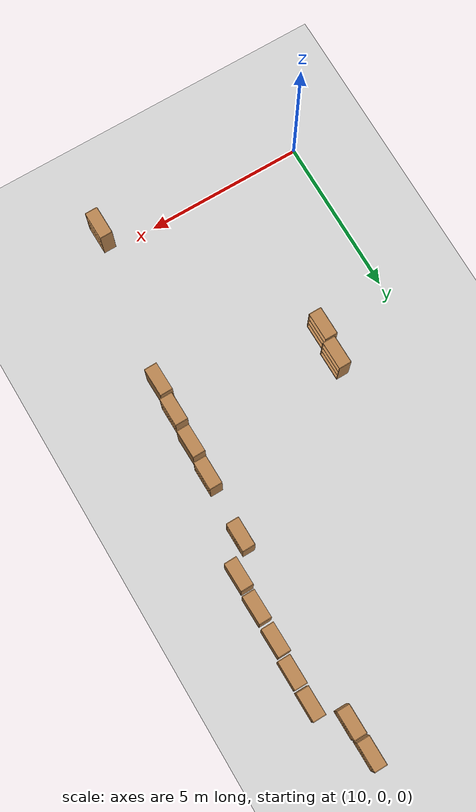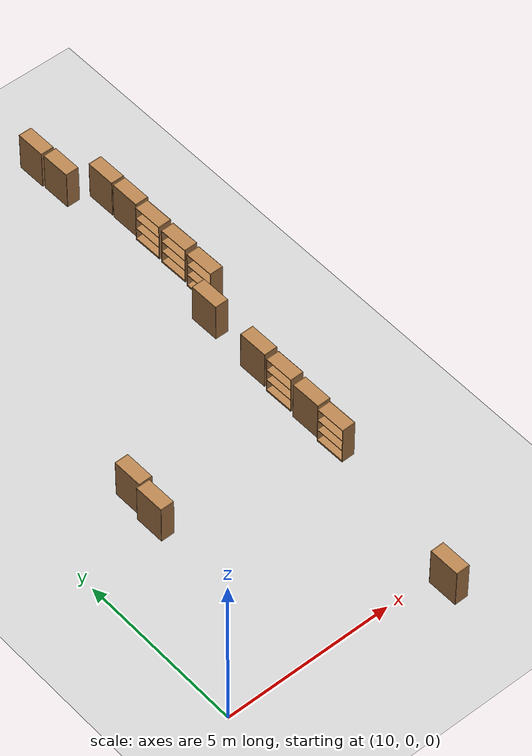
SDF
<sdf version="1.6">
 <world name="default">
  <model name="ground_plane">
   <static>1</static>
   <link name="link">
    <collision name="collision">
     <geometry><plane><normal>0 0 1</normal><size>100 100</size></plane></geometry>
     <surface>
      <contact><collide_bitmask>65535</collide_bitmask></contact>
      <friction><ode><mu>100</mu><mu2>50</mu2></ode></friction>
     </surface>
    </collision>
    <visual name="visual">
     <cast_shadows>0</cast_shadows>
     <geometry><plane><normal>0 0 1</normal><size>100 100</size></plane></geometry>
     <material>
      <script><uri>file://media/materials/scripts/gazebo.material</uri><name>Gazebo/Grey</name></script>
     </material>
    </visual>
   </link>
  </model>
  <model name="30x30env"><static>1</static><pose>32.1206 3.39752 0 0 -0 0</pose></model>
  <model name="bookshelf_clone_clone_0_clone_clone_0_clone_5_clone_clone_clone_2">
   <static>1</static>
   <link name="link">
    <inertial><mass>1</mass></inertial>
    <collision name="back">
     <pose>0 0.005 0.6 0 -0 0</pose>
     <geometry><box><size>0.9 0.01 1.2</size></box></geometry>
    </collision>
    <visual name="visual1">
     <pose>0 0.005 0.6 0 -0 0</pose>
     <geometry><box><size>0.9 0.01 1.2</size></box></geometry>
     <material>
      <script><uri>file://media/materials/scripts/gazebo.material</uri><name>Gazebo/Wood</name></script>
     </material>
    </visual>
    <collision name="left_side">
     <pose>0.45 -0.195 0.6 0 -0 0</pose>
     <geometry><box><size>0.02 0.4 1.2</size></box></geometry>
    </collision>
    <visual name="visual2">
     <pose>0.45 -0.195 0.6 0 -0 0</pose>
     <geometry><box><size>0.02 0.4 1.2</size></box></geometry>
     <material>
      <script><uri>file://media/materials/scripts/gazebo.material</uri><name>Gazebo/Wood</name></script>
     </material>
    </visual>
    <collision name="right_side">
     <pose>-0.45 -0.195 0.6 0 -0 0</pose>
     <geometry><box><size>0.02 0.4 1.2</size></box></geometry>
    </collision>
    <visual name="visual3">
     <pose>-0.45 -0.195 0.6 0 -0 0</pose>
     <geometry><box><size>0.02 0.4 1.2</size></box></geometry>
     <material>
      <script><uri>file://media/materials/scripts/gazebo.material</uri><name>Gazebo/Wood</name></script>
     </material>
    </visual>
    <collision name="bottom">
     <pose>0 -0.195 0.03 0 -0 0</pose>
     <geometry><box><size>0.88 0.4 0.06</size></box></geometry>
    </collision>
    <visual name="visual4">
     <pose>0 -0.195 0.03 0 -0 0</pose>
     <geometry><box><size>0.88 0.4 0.06</size></box></geometry>
     <material>
      <script><uri>file://media/materials/scripts/gazebo.material</uri><name>Gazebo/Wood</name></script>
     </material>
    </visual>
    <collision name="top">
     <pose>0 -0.195 1.19 0 -0 0</pose>
     <geometry><box><size>0.88 0.4 0.02</size></box></geometry>
    </collision>
    <visual name="visual5">
     <pose>0 -0.195 1.19 0 -0 0</pose>
     <geometry><box><size>0.88 0.4 0.02</size></box></geometry>
     <material>
      <script><uri>file://media/materials/scripts/gazebo.material</uri><name>Gazebo/Wood</name></script>
     </material>
    </visual>
    <collision name="low_shelf">
     <pose>0 -0.195 0.43 0 -0 0</pose>
     <geometry><box><size>0.88 0.4 0.02</size></box></geometry>
    </collision>
    <visual name="visual6">
     <pose>0 -0.195 0.43 0 -0 0</pose>
     <geometry><box><size>0.88 0.4 0.02</size></box></geometry>
     <material>
      <script><uri>file://media/materials/scripts/gazebo.material</uri><name>Gazebo/Wood</name></script>
     </material>
    </visual>
    <collision name="high_shelf">
     <pose>0 -0.195 0.8 0 -0 0</pose>
     <geometry><box><size>0.88 0.4 0.02</size></box></geometry>
    </collision>
    <visual name="visual7">
     <pose>0 -0.195 0.8 0 -0 0</pose>
     <geometry><box><size>0.88 0.4 0.02</size></box></geometry>
     <material>
      <script><uri>file://media/materials/scripts/gazebo.material</uri><name>Gazebo/Wood</name></script>
     </material>
    </visual>
   </link>
   <pose>12.1844 5.48615 0 0 -0 1.58018</pose>
  </model>
  <model name="bookshelf_clone_clone_0_clone_clone_0_clone_5_clone_clone_clone_3">
   <static>1</static>
   <link name="link">
    <inertial><mass>1</mass></inertial>
    <collision name="back">
     <pose>0 0.005 0.6 0 -0 0</pose>
     <geometry><box><size>0.9 0.01 1.2</size></box></geometry>
    </collision>
    <visual name="visual1">
     <pose>0 0.005 0.6 0 -0 0</pose>
     <geometry><box><size>0.9 0.01 1.2</size></box></geometry>
     <material>
      <script><uri>file://media/materials/scripts/gazebo.material</uri><name>Gazebo/Wood</name></script>
     </material>
    </visual>
    <collision name="left_side">
     <pose>0.45 -0.195 0.6 0 -0 0</pose>
     <geometry><box><size>0.02 0.4 1.2</size></box></geometry>
    </collision>
    <visual name="visual2">
     <pose>0.45 -0.195 0.6 0 -0 0</pose>
     <geometry><box><size>0.02 0.4 1.2</size></box></geometry>
     <material>
      <script><uri>file://media/materials/scripts/gazebo.material</uri><name>Gazebo/Wood</name></script>
     </material>
    </visual>
    <collision name="right_side">
     <pose>-0.45 -0.195 0.6 0 -0 0</pose>
     <geometry><box><size>0.02 0.4 1.2</size></box></geometry>
    </collision>
    <visual name="visual3">
     <pose>-0.45 -0.195 0.6 0 -0 0</pose>
     <geometry><box><size>0.02 0.4 1.2</size></box></geometry>
     <material>
      <script><uri>file://media/materials/scripts/gazebo.material</uri><name>Gazebo/Wood</name></script>
     </material>
    </visual>
    <collision name="bottom">
     <pose>0 -0.195 0.03 0 -0 0</pose>
     <geometry><box><size>0.88 0.4 0.06</size></box></geometry>
    </collision>
    <visual name="visual4">
     <pose>0 -0.195 0.03 0 -0 0</pose>
     <geometry><box><size>0.88 0.4 0.06</size></box></geometry>
     <material>
      <script><uri>file://media/materials/scripts/gazebo.material</uri><name>Gazebo/Wood</name></script>
     </material>
    </visual>
    <collision name="top">
     <pose>0 -0.195 1.19 0 -0 0</pose>
     <geometry><box><size>0.88 0.4 0.02</size></box></geometry>
    </collision>
    <visual name="visual5">
     <pose>0 -0.195 1.19 0 -0 0</pose>
     <geometry><box><size>0.88 0.4 0.02</size></box></geometry>
     <material>
      <script><uri>file://media/materials/scripts/gazebo.material</uri><name>Gazebo/Wood</name></script>
     </material>
    </visual>
    <collision name="low_shelf">
     <pose>0 -0.195 0.43 0 -0 0</pose>
     <geometry><box><size>0.88 0.4 0.02</size></box></geometry>
    </collision>
    <visual name="visual6">
     <pose>0 -0.195 0.43 0 -0 0</pose>
     <geometry><box><size>0.88 0.4 0.02</size></box></geometry>
     <material>
      <script><uri>file://media/materials/scripts/gazebo.material</uri><name>Gazebo/Wood</name></script>
     </material>
    </visual>
    <collision name="high_shelf">
     <pose>0 -0.195 0.8 0 -0 0</pose>
     <geometry><box><size>0.88 0.4 0.02</size></box></geometry>
    </collision>
    <visual name="visual7">
     <pose>0 -0.195 0.8 0 -0 0</pose>
     <geometry><box><size>0.88 0.4 0.02</size></box></geometry>
     <material>
      <script><uri>file://media/materials/scripts/gazebo.material</uri><name>Gazebo/Wood</name></script>
     </material>
    </visual>
   </link>
   <pose>12.2953 6.42582 0 0 -0 1.58018</pose>
  </model>
  <model name="bookshelf_clone_clone_0_clone_clone_0_clone_5_clone_clone_clone_4_clone">
   <static>1</static>
   <link name="link">
    <inertial><mass>1</mass></inertial>
    <collision name="back">
     <pose>0 0.005 0.6 0 -0 0</pose>
     <geometry><box><size>0.9 0.01 1.2</size></box></geometry>
    </collision>
    <visual name="visual1">
     <pose>0 0.005 0.6 0 -0 0</pose>
     <geometry><box><size>0.9 0.01 1.2</size></box></geometry>
     <material>
      <script><uri>file://media/materials/scripts/gazebo.material</uri><name>Gazebo/Wood</name></script>
     </material>
    </visual>
    <collision name="left_side">
     <pose>0.45 -0.195 0.6 0 -0 0</pose>
     <geometry><box><size>0.02 0.4 1.2</size></box></geometry>
    </collision>
    <visual name="visual2">
     <pose>0.45 -0.195 0.6 0 -0 0</pose>
     <geometry><box><size>0.02 0.4 1.2</size></box></geometry>
     <material>
      <script><uri>file://media/materials/scripts/gazebo.material</uri><name>Gazebo/Wood</name></script>
     </material>
    </visual>
    <collision name="right_side">
     <pose>-0.45 -0.195 0.6 0 -0 0</pose>
     <geometry><box><size>0.02 0.4 1.2</size></box></geometry>
    </collision>
    <visual name="visual3">
     <pose>-0.45 -0.195 0.6 0 -0 0</pose>
     <geometry><box><size>0.02 0.4 1.2</size></box></geometry>
     <material>
      <script><uri>file://media/materials/scripts/gazebo.material</uri><name>Gazebo/Wood</name></script>
     </material>
    </visual>
    <collision name="bottom">
     <pose>0 -0.195 0.03 0 -0 0</pose>
     <geometry><box><size>0.88 0.4 0.06</size></box></geometry>
    </collision>
    <visual name="visual4">
     <pose>0 -0.195 0.03 0 -0 0</pose>
     <geometry><box><size>0.88 0.4 0.06</size></box></geometry>
     <material>
      <script><uri>file://media/materials/scripts/gazebo.material</uri><name>Gazebo/Wood</name></script>
     </material>
    </visual>
    <collision name="top">
     <pose>0 -0.195 1.19 0 -0 0</pose>
     <geometry><box><size>0.88 0.4 0.02</size></box></geometry>
    </collision>
    <visual name="visual5">
     <pose>0 -0.195 1.19 0 -0 0</pose>
     <geometry><box><size>0.88 0.4 0.02</size></box></geometry>
     <material>
      <script><uri>file://media/materials/scripts/gazebo.material</uri><name>Gazebo/Wood</name></script>
     </material>
    </visual>
    <collision name="low_shelf">
     <pose>0 -0.195 0.43 0 -0 0</pose>
     <geometry><box><size>0.88 0.4 0.02</size></box></geometry>
    </collision>
    <visual name="visual6">
     <pose>0 -0.195 0.43 0 -0 0</pose>
     <geometry><box><size>0.88 0.4 0.02</size></box></geometry>
     <material>
      <script><uri>file://media/materials/scripts/gazebo.material</uri><name>Gazebo/Wood</name></script>
     </material>
    </visual>
    <collision name="high_shelf">
     <pose>0 -0.195 0.8 0 -0 0</pose>
     <geometry><box><size>0.88 0.4 0.02</size></box></geometry>
    </collision>
    <visual name="visual7">
     <pose>0 -0.195 0.8 0 -0 0</pose>
     <geometry><box><size>0.88 0.4 0.02</size></box></geometry>
     <material>
      <script><uri>file://media/materials/scripts/gazebo.material</uri><name>Gazebo/Wood</name></script>
     </material>
    </visual>
   </link>
   <pose>18.0804 14.4891 0 0 -0 1.58018</pose>
  </model>
  <model name="bookshelf_clone_clone_0_clone_clone_0_clone_5_clone_clone_clone_4_clone_0">
   <static>1</static>
   <link name="link">
    <inertial><mass>1</mass></inertial>
    <collision name="back">
     <pose>0 0.005 0.6 0 -0 0</pose>
     <geometry><box><size>0.9 0.01 1.2</size></box></geometry>
    </collision>
    <visual name="visual1">
     <pose>0 0.005 0.6 0 -0 0</pose>
     <geometry><box><size>0.9 0.01 1.2</size></box></geometry>
     <material>
      <script><uri>file://media/materials/scripts/gazebo.material</uri><name>Gazebo/Wood</name></script>
     </material>
    </visual>
    <collision name="left_side">
     <pose>0.45 -0.195 0.6 0 -0 0</pose>
     <geometry><box><size>0.02 0.4 1.2</size></box></geometry>
    </collision>
    <visual name="visual2">
     <pose>0.45 -0.195 0.6 0 -0 0</pose>
     <geometry><box><size>0.02 0.4 1.2</size></box></geometry>
     <material>
      <script><uri>file://media/materials/scripts/gazebo.material</uri><name>Gazebo/Wood</name></script>
     </material>
    </visual>
    <collision name="right_side">
     <pose>-0.45 -0.195 0.6 0 -0 0</pose>
     <geometry><box><size>0.02 0.4 1.2</size></box></geometry>
    </collision>
    <visual name="visual3">
     <pose>-0.45 -0.195 0.6 0 -0 0</pose>
     <geometry><box><size>0.02 0.4 1.2</size></box></geometry>
     <material>
      <script><uri>file://media/materials/scripts/gazebo.material</uri><name>Gazebo/Wood</name></script>
     </material>
    </visual>
    <collision name="bottom">
     <pose>0 -0.195 0.03 0 -0 0</pose>
     <geometry><box><size>0.88 0.4 0.06</size></box></geometry>
    </collision>
    <visual name="visual4">
     <pose>0 -0.195 0.03 0 -0 0</pose>
     <geometry><box><size>0.88 0.4 0.06</size></box></geometry>
     <material>
      <script><uri>file://media/materials/scripts/gazebo.material</uri><name>Gazebo/Wood</name></script>
     </material>
    </visual>
    <collision name="top">
     <pose>0 -0.195 1.19 0 -0 0</pose>
     <geometry><box><size>0.88 0.4 0.02</size></box></geometry>
    </collision>
    <visual name="visual5">
     <pose>0 -0.195 1.19 0 -0 0</pose>
     <geometry><box><size>0.88 0.4 0.02</size></box></geometry>
     <material>
      <script><uri>file://media/materials/scripts/gazebo.material</uri><name>Gazebo/Wood</name></script>
     </material>
    </visual>
    <collision name="low_shelf">
     <pose>0 -0.195 0.43 0 -0 0</pose>
     <geometry><box><size>0.88 0.4 0.02</size></box></geometry>
    </collision>
    <visual name="visual6">
     <pose>0 -0.195 0.43 0 -0 0</pose>
     <geometry><box><size>0.88 0.4 0.02</size></box></geometry>
     <material>
      <script><uri>file://media/materials/scripts/gazebo.material</uri><name>Gazebo/Wood</name></script>
     </material>
    </visual>
    <collision name="high_shelf">
     <pose>0 -0.195 0.8 0 -0 0</pose>
     <geometry><box><size>0.88 0.4 0.02</size></box></geometry>
    </collision>
    <visual name="visual7">
     <pose>0 -0.195 0.8 0 -0 0</pose>
     <geometry><box><size>0.88 0.4 0.02</size></box></geometry>
     <material>
      <script><uri>file://media/materials/scripts/gazebo.material</uri><name>Gazebo/Wood</name></script>
     </material>
    </visual>
   </link>
   <pose>18.0771 13.5175 0 0 -0 1.58018</pose>
  </model>
  <model name="bookshelf_clone_clone_0_clone_clone_0_clone_5_clone_clone_clone_4_clone_1">
   <static>1</static>
   <link name="link">
    <inertial><mass>1</mass></inertial>
    <collision name="back">
     <pose>0 0.005 0.6 0 -0 0</pose>
     <geometry><box><size>0.9 0.01 1.2</size></box></geometry>
    </collision>
    <visual name="visual1">
     <pose>0 0.005 0.6 0 -0 0</pose>
     <geometry><box><size>0.9 0.01 1.2</size></box></geometry>
     <material>
      <script><uri>file://media/materials/scripts/gazebo.material</uri><name>Gazebo/Wood</name></script>
     </material>
    </visual>
    <collision name="left_side">
     <pose>0.45 -0.195 0.6 0 -0 0</pose>
     <geometry><box><size>0.02 0.4 1.2</size></box></geometry>
    </collision>
    <visual name="visual2">
     <pose>0.45 -0.195 0.6 0 -0 0</pose>
     <geometry><box><size>0.02 0.4 1.2</size></box></geometry>
     <material>
      <script><uri>file://media/materials/scripts/gazebo.material</uri><name>Gazebo/Wood</name></script>
     </material>
    </visual>
    <collision name="right_side">
     <pose>-0.45 -0.195 0.6 0 -0 0</pose>
     <geometry><box><size>0.02 0.4 1.2</size></box></geometry>
    </collision>
    <visual name="visual3">
     <pose>-0.45 -0.195 0.6 0 -0 0</pose>
     <geometry><box><size>0.02 0.4 1.2</size></box></geometry>
     <material>
      <script><uri>file://media/materials/scripts/gazebo.material</uri><name>Gazebo/Wood</name></script>
     </material>
    </visual>
    <collision name="bottom">
     <pose>0 -0.195 0.03 0 -0 0</pose>
     <geometry><box><size>0.88 0.4 0.06</size></box></geometry>
    </collision>
    <visual name="visual4">
     <pose>0 -0.195 0.03 0 -0 0</pose>
     <geometry><box><size>0.88 0.4 0.06</size></box></geometry>
     <material>
      <script><uri>file://media/materials/scripts/gazebo.material</uri><name>Gazebo/Wood</name></script>
     </material>
    </visual>
    <collision name="top">
     <pose>0 -0.195 1.19 0 -0 0</pose>
     <geometry><box><size>0.88 0.4 0.02</size></box></geometry>
    </collision>
    <visual name="visual5">
     <pose>0 -0.195 1.19 0 -0 0</pose>
     <geometry><box><size>0.88 0.4 0.02</size></box></geometry>
     <material>
      <script><uri>file://media/materials/scripts/gazebo.material</uri><name>Gazebo/Wood</name></script>
     </material>
    </visual>
    <collision name="low_shelf">
     <pose>0 -0.195 0.43 0 -0 0</pose>
     <geometry><box><size>0.88 0.4 0.02</size></box></geometry>
    </collision>
    <visual name="visual6">
     <pose>0 -0.195 0.43 0 -0 0</pose>
     <geometry><box><size>0.88 0.4 0.02</size></box></geometry>
     <material>
      <script><uri>file://media/materials/scripts/gazebo.material</uri><name>Gazebo/Wood</name></script>
     </material>
    </visual>
    <collision name="high_shelf">
     <pose>0 -0.195 0.8 0 -0 0</pose>
     <geometry><box><size>0.88 0.4 0.02</size></box></geometry>
    </collision>
    <visual name="visual7">
     <pose>0 -0.195 0.8 0 -0 0</pose>
     <geometry><box><size>0.88 0.4 0.02</size></box></geometry>
     <material>
      <script><uri>file://media/materials/scripts/gazebo.material</uri><name>Gazebo/Wood</name></script>
     </material>
    </visual>
   </link>
   <pose>18.4024 12.5443 0 0 0 -1.55213</pose>
  </model>
  <model name="bookshelf_clone_clone_0_clone_clone_0_clone_5_clone_clone_clone_4_clone_1_clone">
   <static>1</static>
   <link name="link">
    <inertial><mass>1</mass></inertial>
    <collision name="back">
     <pose>0 0.005 0.6 0 -0 0</pose>
     <geometry><box><size>0.9 0.01 1.2</size></box></geometry>
    </collision>
    <visual name="visual1">
     <pose>0 0.005 0.6 0 -0 0</pose>
     <geometry><box><size>0.9 0.01 1.2</size></box></geometry>
     <material>
      <script><uri>file://media/materials/scripts/gazebo.material</uri><name>Gazebo/Wood</name></script>
     </material>
    </visual>
    <collision name="left_side">
     <pose>0.45 -0.195 0.6 0 -0 0</pose>
     <geometry><box><size>0.02 0.4 1.2</size></box></geometry>
    </collision>
    <visual name="visual2">
     <pose>0.45 -0.195 0.6 0 -0 0</pose>
     <geometry><box><size>0.02 0.4 1.2</size></box></geometry>
     <material>
      <script><uri>file://media/materials/scripts/gazebo.material</uri><name>Gazebo/Wood</name></script>
     </material>
    </visual>
    <collision name="right_side">
     <pose>-0.45 -0.195 0.6 0 -0 0</pose>
     <geometry><box><size>0.02 0.4 1.2</size></box></geometry>
    </collision>
    <visual name="visual3">
     <pose>-0.45 -0.195 0.6 0 -0 0</pose>
     <geometry><box><size>0.02 0.4 1.2</size></box></geometry>
     <material>
      <script><uri>file://media/materials/scripts/gazebo.material</uri><name>Gazebo/Wood</name></script>
     </material>
    </visual>
    <collision name="bottom">
     <pose>0 -0.195 0.03 0 -0 0</pose>
     <geometry><box><size>0.88 0.4 0.06</size></box></geometry>
    </collision>
    <visual name="visual4">
     <pose>0 -0.195 0.03 0 -0 0</pose>
     <geometry><box><size>0.88 0.4 0.06</size></box></geometry>
     <material>
      <script><uri>file://media/materials/scripts/gazebo.material</uri><name>Gazebo/Wood</name></script>
     </material>
    </visual>
    <collision name="top">
     <pose>0 -0.195 1.19 0 -0 0</pose>
     <geometry><box><size>0.88 0.4 0.02</size></box></geometry>
    </collision>
    <visual name="visual5">
     <pose>0 -0.195 1.19 0 -0 0</pose>
     <geometry><box><size>0.88 0.4 0.02</size></box></geometry>
     <material>
      <script><uri>file://media/materials/scripts/gazebo.material</uri><name>Gazebo/Wood</name></script>
     </material>
    </visual>
    <collision name="low_shelf">
     <pose>0 -0.195 0.43 0 -0 0</pose>
     <geometry><box><size>0.88 0.4 0.02</size></box></geometry>
    </collision>
    <visual name="visual6">
     <pose>0 -0.195 0.43 0 -0 0</pose>
     <geometry><box><size>0.88 0.4 0.02</size></box></geometry>
     <material>
      <script><uri>file://media/materials/scripts/gazebo.material</uri><name>Gazebo/Wood</name></script>
     </material>
    </visual>
    <collision name="high_shelf">
     <pose>0 -0.195 0.8 0 -0 0</pose>
     <geometry><box><size>0.88 0.4 0.02</size></box></geometry>
    </collision>
    <visual name="visual7">
     <pose>0 -0.195 0.8 0 -0 0</pose>
     <geometry><box><size>0.88 0.4 0.02</size></box></geometry>
     <material>
      <script><uri>file://media/materials/scripts/gazebo.material</uri><name>Gazebo/Wood</name></script>
     </material>
    </visual>
   </link>
   <pose>18.3965 11.5119 0 0 0 -1.55213</pose>
  </model>
  <model name="bookshelf_clone_clone_0_clone_clone_0_clone_5_clone_clone_clone_4_clone_1_clone_0">
   <static>1</static>
   <link name="link">
    <inertial><mass>1</mass></inertial>
    <collision name="back">
     <pose>0 0.005 0.6 0 -0 0</pose>
     <geometry><box><size>0.9 0.01 1.2</size></box></geometry>
    </collision>
    <visual name="visual1">
     <pose>0 0.005 0.6 0 -0 0</pose>
     <geometry><box><size>0.9 0.01 1.2</size></box></geometry>
     <material>
      <script><uri>file://media/materials/scripts/gazebo.material</uri><name>Gazebo/Wood</name></script>
     </material>
    </visual>
    <collision name="left_side">
     <pose>0.45 -0.195 0.6 0 -0 0</pose>
     <geometry><box><size>0.02 0.4 1.2</size></box></geometry>
    </collision>
    <visual name="visual2">
     <pose>0.45 -0.195 0.6 0 -0 0</pose>
     <geometry><box><size>0.02 0.4 1.2</size></box></geometry>
     <material>
      <script><uri>file://media/materials/scripts/gazebo.material</uri><name>Gazebo/Wood</name></script>
     </material>
    </visual>
    <collision name="right_side">
     <pose>-0.45 -0.195 0.6 0 -0 0</pose>
     <geometry><box><size>0.02 0.4 1.2</size></box></geometry>
    </collision>
    <visual name="visual3">
     <pose>-0.45 -0.195 0.6 0 -0 0</pose>
     <geometry><box><size>0.02 0.4 1.2</size></box></geometry>
     <material>
      <script><uri>file://media/materials/scripts/gazebo.material</uri><name>Gazebo/Wood</name></script>
     </material>
    </visual>
    <collision name="bottom">
     <pose>0 -0.195 0.03 0 -0 0</pose>
     <geometry><box><size>0.88 0.4 0.06</size></box></geometry>
    </collision>
    <visual name="visual4">
     <pose>0 -0.195 0.03 0 -0 0</pose>
     <geometry><box><size>0.88 0.4 0.06</size></box></geometry>
     <material>
      <script><uri>file://media/materials/scripts/gazebo.material</uri><name>Gazebo/Wood</name></script>
     </material>
    </visual>
    <collision name="top">
     <pose>0 -0.195 1.19 0 -0 0</pose>
     <geometry><box><size>0.88 0.4 0.02</size></box></geometry>
    </collision>
    <visual name="visual5">
     <pose>0 -0.195 1.19 0 -0 0</pose>
     <geometry><box><size>0.88 0.4 0.02</size></box></geometry>
     <material>
      <script><uri>file://media/materials/scripts/gazebo.material</uri><name>Gazebo/Wood</name></script>
     </material>
    </visual>
    <collision name="low_shelf">
     <pose>0 -0.195 0.43 0 -0 0</pose>
     <geometry><box><size>0.88 0.4 0.02</size></box></geometry>
    </collision>
    <visual name="visual6">
     <pose>0 -0.195 0.43 0 -0 0</pose>
     <geometry><box><size>0.88 0.4 0.02</size></box></geometry>
     <material>
      <script><uri>file://media/materials/scripts/gazebo.material</uri><name>Gazebo/Wood</name></script>
     </material>
    </visual>
    <collision name="high_shelf">
     <pose>0 -0.195 0.8 0 -0 0</pose>
     <geometry><box><size>0.88 0.4 0.02</size></box></geometry>
    </collision>
    <visual name="visual7">
     <pose>0 -0.195 0.8 0 -0 0</pose>
     <geometry><box><size>0.88 0.4 0.02</size></box></geometry>
     <material>
      <script><uri>file://media/materials/scripts/gazebo.material</uri><name>Gazebo/Wood</name></script>
     </material>
    </visual>
   </link>
   <pose>18.3669 10.4804 0 0 0 -1.55213</pose>
  </model>
  <model name="bookshelf_clone_clone_0_clone_clone_0_clone_5_clone_clone_clone_4_clone_0_clone">
   <static>1</static>
   <link name="link">
    <inertial><mass>1</mass></inertial>
    <collision name="back">
     <pose>0 0.005 0.6 0 -0 0</pose>
     <geometry><box><size>0.9 0.01 1.2</size></box></geometry>
    </collision>
    <visual name="visual1">
     <pose>0 0.005 0.6 0 -0 0</pose>
     <geometry><box><size>0.9 0.01 1.2</size></box></geometry>
     <material>
      <script><uri>file://media/materials/scripts/gazebo.material</uri><name>Gazebo/Wood</name></script>
     </material>
    </visual>
    <collision name="left_side">
     <pose>0.45 -0.195 0.6 0 -0 0</pose>
     <geometry><box><size>0.02 0.4 1.2</size></box></geometry>
    </collision>
    <visual name="visual2">
     <pose>0.45 -0.195 0.6 0 -0 0</pose>
     <geometry><box><size>0.02 0.4 1.2</size></box></geometry>
     <material>
      <script><uri>file://media/materials/scripts/gazebo.material</uri><name>Gazebo/Wood</name></script>
     </material>
    </visual>
    <collision name="right_side">
     <pose>-0.45 -0.195 0.6 0 -0 0</pose>
     <geometry><box><size>0.02 0.4 1.2</size></box></geometry>
    </collision>
    <visual name="visual3">
     <pose>-0.45 -0.195 0.6 0 -0 0</pose>
     <geometry><box><size>0.02 0.4 1.2</size></box></geometry>
     <material>
      <script><uri>file://media/materials/scripts/gazebo.material</uri><name>Gazebo/Wood</name></script>
     </material>
    </visual>
    <collision name="bottom">
     <pose>0 -0.195 0.03 0 -0 0</pose>
     <geometry><box><size>0.88 0.4 0.06</size></box></geometry>
    </collision>
    <visual name="visual4">
     <pose>0 -0.195 0.03 0 -0 0</pose>
     <geometry><box><size>0.88 0.4 0.06</size></box></geometry>
     <material>
      <script><uri>file://media/materials/scripts/gazebo.material</uri><name>Gazebo/Wood</name></script>
     </material>
    </visual>
    <collision name="top">
     <pose>0 -0.195 1.19 0 -0 0</pose>
     <geometry><box><size>0.88 0.4 0.02</size></box></geometry>
    </collision>
    <visual name="visual5">
     <pose>0 -0.195 1.19 0 -0 0</pose>
     <geometry><box><size>0.88 0.4 0.02</size></box></geometry>
     <material>
      <script><uri>file://media/materials/scripts/gazebo.material</uri><name>Gazebo/Wood</name></script>
     </material>
    </visual>
    <collision name="low_shelf">
     <pose>0 -0.195 0.43 0 -0 0</pose>
     <geometry><box><size>0.88 0.4 0.02</size></box></geometry>
    </collision>
    <visual name="visual6">
     <pose>0 -0.195 0.43 0 -0 0</pose>
     <geometry><box><size>0.88 0.4 0.02</size></box></geometry>
     <material>
      <script><uri>file://media/materials/scripts/gazebo.material</uri><name>Gazebo/Wood</name></script>
     </material>
    </visual>
    <collision name="high_shelf">
     <pose>0 -0.195 0.8 0 -0 0</pose>
     <geometry><box><size>0.88 0.4 0.02</size></box></geometry>
    </collision>
    <visual name="visual7">
     <pose>0 -0.195 0.8 0 -0 0</pose>
     <geometry><box><size>0.88 0.4 0.02</size></box></geometry>
     <material>
      <script><uri>file://media/materials/scripts/gazebo.material</uri><name>Gazebo/Wood</name></script>
     </material>
    </visual>
   </link>
   <pose>17.3675 9.54734 0 0 -0 1.58018</pose>
  </model>
  <model name="bookshelf_clone_clone_0_clone_clone_0_clone_5_clone_clone_clone_clone_clone">
   <static>1</static>
   <link name="link">
    <inertial><mass>1</mass></inertial>
    <collision name="back">
     <pose>0 0.005 0.6 0 -0 0</pose>
     <geometry><box><size>0.9 0.01 1.2</size></box></geometry>
    </collision>
    <visual name="visual1">
     <pose>0 0.005 0.6 0 -0 0</pose>
     <geometry><box><size>0.9 0.01 1.2</size></box></geometry>
     <material>
      <script><uri>file://media/materials/scripts/gazebo.material</uri><name>Gazebo/Wood</name></script>
     </material>
    </visual>
    <collision name="left_side">
     <pose>0.45 -0.195 0.6 0 -0 0</pose>
     <geometry><box><size>0.02 0.4 1.2</size></box></geometry>
    </collision>
    <visual name="visual2">
     <pose>0.45 -0.195 0.6 0 -0 0</pose>
     <geometry><box><size>0.02 0.4 1.2</size></box></geometry>
     <material>
      <script><uri>file://media/materials/scripts/gazebo.material</uri><name>Gazebo/Wood</name></script>
     </material>
    </visual>
    <collision name="right_side">
     <pose>-0.45 -0.195 0.6 0 -0 0</pose>
     <geometry><box><size>0.02 0.4 1.2</size></box></geometry>
    </collision>
    <visual name="visual3">
     <pose>-0.45 -0.195 0.6 0 -0 0</pose>
     <geometry><box><size>0.02 0.4 1.2</size></box></geometry>
     <material>
      <script><uri>file://media/materials/scripts/gazebo.material</uri><name>Gazebo/Wood</name></script>
     </material>
    </visual>
    <collision name="bottom">
     <pose>0 -0.195 0.03 0 -0 0</pose>
     <geometry><box><size>0.88 0.4 0.06</size></box></geometry>
    </collision>
    <visual name="visual4">
     <pose>0 -0.195 0.03 0 -0 0</pose>
     <geometry><box><size>0.88 0.4 0.06</size></box></geometry>
     <material>
      <script><uri>file://media/materials/scripts/gazebo.material</uri><name>Gazebo/Wood</name></script>
     </material>
    </visual>
    <collision name="top">
     <pose>0 -0.195 1.19 0 -0 0</pose>
     <geometry><box><size>0.88 0.4 0.02</size></box></geometry>
    </collision>
    <visual name="visual5">
     <pose>0 -0.195 1.19 0 -0 0</pose>
     <geometry><box><size>0.88 0.4 0.02</size></box></geometry>
     <material>
      <script><uri>file://media/materials/scripts/gazebo.material</uri><name>Gazebo/Wood</name></script>
     </material>
    </visual>
    <collision name="low_shelf">
     <pose>0 -0.195 0.43 0 -0 0</pose>
     <geometry><box><size>0.88 0.4 0.02</size></box></geometry>
    </collision>
    <visual name="visual6">
     <pose>0 -0.195 0.43 0 -0 0</pose>
     <geometry><box><size>0.88 0.4 0.02</size></box></geometry>
     <material>
      <script><uri>file://media/materials/scripts/gazebo.material</uri><name>Gazebo/Wood</name></script>
     </material>
    </visual>
    <collision name="high_shelf">
     <pose>0 -0.195 0.8 0 -0 0</pose>
     <geometry><box><size>0.88 0.4 0.02</size></box></geometry>
    </collision>
    <visual name="visual7">
     <pose>0 -0.195 0.8 0 -0 0</pose>
     <geometry><box><size>0.88 0.4 0.02</size></box></geometry>
     <material>
      <script><uri>file://media/materials/scripts/gazebo.material</uri><name>Gazebo/Wood</name></script>
     </material>
    </visual>
   </link>
   <pose>16.2684 -0.544022 0 0 -0 1.58018</pose>
  </model>
  <model name="bookshelf_clone_clone_0_clone_clone_0_clone_5_clone_clone_clone_4_clone_clone">
   <static>1</static>
   <link name="link">
    <inertial><mass>1</mass></inertial>
    <collision name="back">
     <pose>0 0.005 0.6 0 -0 0</pose>
     <geometry><box><size>0.9 0.01 1.2</size></box></geometry>
    </collision>
    <visual name="visual1">
     <pose>0 0.005 0.6 0 -0 0</pose>
     <geometry><box><size>0.9 0.01 1.2</size></box></geometry>
     <material>
      <script><uri>file://media/materials/scripts/gazebo.material</uri><name>Gazebo/Wood</name></script>
     </material>
    </visual>
    <collision name="left_side">
     <pose>0.45 -0.195 0.6 0 -0 0</pose>
     <geometry><box><size>0.02 0.4 1.2</size></box></geometry>
    </collision>
    <visual name="visual2">
     <pose>0.45 -0.195 0.6 0 -0 0</pose>
     <geometry><box><size>0.02 0.4 1.2</size></box></geometry>
     <material>
      <script><uri>file://media/materials/scripts/gazebo.material</uri><name>Gazebo/Wood</name></script>
     </material>
    </visual>
    <collision name="right_side">
     <pose>-0.45 -0.195 0.6 0 -0 0</pose>
     <geometry><box><size>0.02 0.4 1.2</size></box></geometry>
    </collision>
    <visual name="visual3">
     <pose>-0.45 -0.195 0.6 0 -0 0</pose>
     <geometry><box><size>0.02 0.4 1.2</size></box></geometry>
     <material>
      <script><uri>file://media/materials/scripts/gazebo.material</uri><name>Gazebo/Wood</name></script>
     </material>
    </visual>
    <collision name="bottom">
     <pose>0 -0.195 0.03 0 -0 0</pose>
     <geometry><box><size>0.88 0.4 0.06</size></box></geometry>
    </collision>
    <visual name="visual4">
     <pose>0 -0.195 0.03 0 -0 0</pose>
     <geometry><box><size>0.88 0.4 0.06</size></box></geometry>
     <material>
      <script><uri>file://media/materials/scripts/gazebo.material</uri><name>Gazebo/Wood</name></script>
     </material>
    </visual>
    <collision name="top">
     <pose>0 -0.195 1.19 0 -0 0</pose>
     <geometry><box><size>0.88 0.4 0.02</size></box></geometry>
    </collision>
    <visual name="visual5">
     <pose>0 -0.195 1.19 0 -0 0</pose>
     <geometry><box><size>0.88 0.4 0.02</size></box></geometry>
     <material>
      <script><uri>file://media/materials/scripts/gazebo.material</uri><name>Gazebo/Wood</name></script>
     </material>
    </visual>
    <collision name="low_shelf">
     <pose>0 -0.195 0.43 0 -0 0</pose>
     <geometry><box><size>0.88 0.4 0.02</size></box></geometry>
    </collision>
    <visual name="visual6">
     <pose>0 -0.195 0.43 0 -0 0</pose>
     <geometry><box><size>0.88 0.4 0.02</size></box></geometry>
     <material>
      <script><uri>file://media/materials/scripts/gazebo.material</uri><name>Gazebo/Wood</name></script>
     </material>
    </visual>
    <collision name="high_shelf">
     <pose>0 -0.195 0.8 0 -0 0</pose>
     <geometry><box><size>0.88 0.4 0.02</size></box></geometry>
    </collision>
    <visual name="visual7">
     <pose>0 -0.195 0.8 0 -0 0</pose>
     <geometry><box><size>0.88 0.4 0.02</size></box></geometry>
     <material>
      <script><uri>file://media/materials/scripts/gazebo.material</uri><name>Gazebo/Wood</name></script>
     </material>
    </visual>
   </link>
   <pose>17.3808 15.4663 0 0 -0 1.58018</pose>
  </model>
  <model name="bookshelf_clone_clone_0_clone_clone_0_clone_5_clone_clone_clone_4_clone_clone_0">
   <static>1</static>
   <link name="link">
    <inertial><mass>1</mass></inertial>
    <collision name="back">
     <pose>0 0.005 0.6 0 -0 0</pose>
     <geometry><box><size>0.9 0.01 1.2</size></box></geometry>
    </collision>
    <visual name="visual1">
     <pose>0 0.005 0.6 0 -0 0</pose>
     <geometry><box><size>0.9 0.01 1.2</size></box></geometry>
     <material>
      <script><uri>file://media/materials/scripts/gazebo.material</uri><name>Gazebo/Wood</name></script>
     </material>
    </visual>
    <collision name="left_side">
     <pose>0.45 -0.195 0.6 0 -0 0</pose>
     <geometry><box><size>0.02 0.4 1.2</size></box></geometry>
    </collision>
    <visual name="visual2">
     <pose>0.45 -0.195 0.6 0 -0 0</pose>
     <geometry><box><size>0.02 0.4 1.2</size></box></geometry>
     <material>
      <script><uri>file://media/materials/scripts/gazebo.material</uri><name>Gazebo/Wood</name></script>
     </material>
    </visual>
    <collision name="right_side">
     <pose>-0.45 -0.195 0.6 0 -0 0</pose>
     <geometry><box><size>0.02 0.4 1.2</size></box></geometry>
    </collision>
    <visual name="visual3">
     <pose>-0.45 -0.195 0.6 0 -0 0</pose>
     <geometry><box><size>0.02 0.4 1.2</size></box></geometry>
     <material>
      <script><uri>file://media/materials/scripts/gazebo.material</uri><name>Gazebo/Wood</name></script>
     </material>
    </visual>
    <collision name="bottom">
     <pose>0 -0.195 0.03 0 -0 0</pose>
     <geometry><box><size>0.88 0.4 0.06</size></box></geometry>
    </collision>
    <visual name="visual4">
     <pose>0 -0.195 0.03 0 -0 0</pose>
     <geometry><box><size>0.88 0.4 0.06</size></box></geometry>
     <material>
      <script><uri>file://media/materials/scripts/gazebo.material</uri><name>Gazebo/Wood</name></script>
     </material>
    </visual>
    <collision name="top">
     <pose>0 -0.195 1.19 0 -0 0</pose>
     <geometry><box><size>0.88 0.4 0.02</size></box></geometry>
    </collision>
    <visual name="visual5">
     <pose>0 -0.195 1.19 0 -0 0</pose>
     <geometry><box><size>0.88 0.4 0.02</size></box></geometry>
     <material>
      <script><uri>file://media/materials/scripts/gazebo.material</uri><name>Gazebo/Wood</name></script>
     </material>
    </visual>
    <collision name="low_shelf">
     <pose>0 -0.195 0.43 0 -0 0</pose>
     <geometry><box><size>0.88 0.4 0.02</size></box></geometry>
    </collision>
    <visual name="visual6">
     <pose>0 -0.195 0.43 0 -0 0</pose>
     <geometry><box><size>0.88 0.4 0.02</size></box></geometry>
     <material>
      <script><uri>file://media/materials/scripts/gazebo.material</uri><name>Gazebo/Wood</name></script>
     </material>
    </visual>
    <collision name="high_shelf">
     <pose>0 -0.195 0.8 0 -0 0</pose>
     <geometry><box><size>0.88 0.4 0.02</size></box></geometry>
    </collision>
    <visual name="visual7">
     <pose>0 -0.195 0.8 0 -0 0</pose>
     <geometry><box><size>0.88 0.4 0.02</size></box></geometry>
     <material>
      <script><uri>file://media/materials/scripts/gazebo.material</uri><name>Gazebo/Wood</name></script>
     </material>
    </visual>
   </link>
   <pose>17.3508 16.4427 0 0 -0 1.58018</pose>
  </model>
  <model name="bookshelf_clone_clone_0_clone_clone_0_clone_5_clone_clone_clone_4_clone_5_clone_1">
   <static>1</static>
   <link name="link">
    <inertial><mass>1</mass></inertial>
    <collision name="back">
     <pose>0 0.005 0.6 0 -0 0</pose>
     <geometry><box><size>0.9 0.01 1.2</size></box></geometry>
    </collision>
    <visual name="visual1">
     <pose>0 0.005 0.6 0 -0 0</pose>
     <geometry><box><size>0.9 0.01 1.2</size></box></geometry>
     <material>
      <script><uri>file://media/materials/scripts/gazebo.material</uri><name>Gazebo/Wood</name></script>
     </material>
    </visual>
    <collision name="left_side">
     <pose>0.45 -0.195 0.6 0 -0 0</pose>
     <geometry><box><size>0.02 0.4 1.2</size></box></geometry>
    </collision>
    <visual name="visual2">
     <pose>0.45 -0.195 0.6 0 -0 0</pose>
     <geometry><box><size>0.02 0.4 1.2</size></box></geometry>
     <material>
      <script><uri>file://media/materials/scripts/gazebo.material</uri><name>Gazebo/Wood</name></script>
     </material>
    </visual>
    <collision name="right_side">
     <pose>-0.45 -0.195 0.6 0 -0 0</pose>
     <geometry><box><size>0.02 0.4 1.2</size></box></geometry>
    </collision>
    <visual name="visual3">
     <pose>-0.45 -0.195 0.6 0 -0 0</pose>
     <geometry><box><size>0.02 0.4 1.2</size></box></geometry>
     <material>
      <script><uri>file://media/materials/scripts/gazebo.material</uri><name>Gazebo/Wood</name></script>
     </material>
    </visual>
    <collision name="bottom">
     <pose>0 -0.195 0.03 0 -0 0</pose>
     <geometry><box><size>0.88 0.4 0.06</size></box></geometry>
    </collision>
    <visual name="visual4">
     <pose>0 -0.195 0.03 0 -0 0</pose>
     <geometry><box><size>0.88 0.4 0.06</size></box></geometry>
     <material>
      <script><uri>file://media/materials/scripts/gazebo.material</uri><name>Gazebo/Wood</name></script>
     </material>
    </visual>
    <collision name="top">
     <pose>0 -0.195 1.19 0 -0 0</pose>
     <geometry><box><size>0.88 0.4 0.02</size></box></geometry>
    </collision>
    <visual name="visual5">
     <pose>0 -0.195 1.19 0 -0 0</pose>
     <geometry><box><size>0.88 0.4 0.02</size></box></geometry>
     <material>
      <script><uri>file://media/materials/scripts/gazebo.material</uri><name>Gazebo/Wood</name></script>
     </material>
    </visual>
    <collision name="low_shelf">
     <pose>0 -0.195 0.43 0 -0 0</pose>
     <geometry><box><size>0.88 0.4 0.02</size></box></geometry>
    </collision>
    <visual name="visual6">
     <pose>0 -0.195 0.43 0 -0 0</pose>
     <geometry><box><size>0.88 0.4 0.02</size></box></geometry>
     <material>
      <script><uri>file://media/materials/scripts/gazebo.material</uri><name>Gazebo/Wood</name></script>
     </material>
    </visual>
    <collision name="high_shelf">
     <pose>0 -0.195 0.8 0 -0 0</pose>
     <geometry><box><size>0.88 0.4 0.02</size></box></geometry>
    </collision>
    <visual name="visual7">
     <pose>0 -0.195 0.8 0 -0 0</pose>
     <geometry><box><size>0.88 0.4 0.02</size></box></geometry>
     <material>
      <script><uri>file://media/materials/scripts/gazebo.material</uri><name>Gazebo/Wood</name></script>
     </material>
    </visual>
   </link>
   <pose>17.2738 7.57237 0 0 -0 1.58018</pose>
  </model>
  <model name="bookshelf_clone_clone_0_clone_clone_0_clone_5_clone_clone_clone_4_clone_5_clone_3">
   <static>1</static>
   <link name="link">
    <inertial><mass>1</mass></inertial>
    <collision name="back">
     <pose>0 0.005 0.6 0 -0 0</pose>
     <geometry><box><size>0.9 0.01 1.2</size></box></geometry>
    </collision>
    <visual name="visual1">
     <pose>0 0.005 0.6 0 -0 0</pose>
     <geometry><box><size>0.9 0.01 1.2</size></box></geometry>
     <material>
      <script><uri>file://media/materials/scripts/gazebo.material</uri><name>Gazebo/Wood</name></script>
     </material>
    </visual>
    <collision name="left_side">
     <pose>0.45 -0.195 0.6 0 -0 0</pose>
     <geometry><box><size>0.02 0.4 1.2</size></box></geometry>
    </collision>
    <visual name="visual2">
     <pose>0.45 -0.195 0.6 0 -0 0</pose>
     <geometry><box><size>0.02 0.4 1.2</size></box></geometry>
     <material>
      <script><uri>file://media/materials/scripts/gazebo.material</uri><name>Gazebo/Wood</name></script>
     </material>
    </visual>
    <collision name="right_side">
     <pose>-0.45 -0.195 0.6 0 -0 0</pose>
     <geometry><box><size>0.02 0.4 1.2</size></box></geometry>
    </collision>
    <visual name="visual3">
     <pose>-0.45 -0.195 0.6 0 -0 0</pose>
     <geometry><box><size>0.02 0.4 1.2</size></box></geometry>
     <material>
      <script><uri>file://media/materials/scripts/gazebo.material</uri><name>Gazebo/Wood</name></script>
     </material>
    </visual>
    <collision name="bottom">
     <pose>0 -0.195 0.03 0 -0 0</pose>
     <geometry><box><size>0.88 0.4 0.06</size></box></geometry>
    </collision>
    <visual name="visual4">
     <pose>0 -0.195 0.03 0 -0 0</pose>
     <geometry><box><size>0.88 0.4 0.06</size></box></geometry>
     <material>
      <script><uri>file://media/materials/scripts/gazebo.material</uri><name>Gazebo/Wood</name></script>
     </material>
    </visual>
    <collision name="top">
     <pose>0 -0.195 1.19 0 -0 0</pose>
     <geometry><box><size>0.88 0.4 0.02</size></box></geometry>
    </collision>
    <visual name="visual5">
     <pose>0 -0.195 1.19 0 -0 0</pose>
     <geometry><box><size>0.88 0.4 0.02</size></box></geometry>
     <material>
      <script><uri>file://media/materials/scripts/gazebo.material</uri><name>Gazebo/Wood</name></script>
     </material>
    </visual>
    <collision name="low_shelf">
     <pose>0 -0.195 0.43 0 -0 0</pose>
     <geometry><box><size>0.88 0.4 0.02</size></box></geometry>
    </collision>
    <visual name="visual6">
     <pose>0 -0.195 0.43 0 -0 0</pose>
     <geometry><box><size>0.88 0.4 0.02</size></box></geometry>
     <material>
      <script><uri>file://media/materials/scripts/gazebo.material</uri><name>Gazebo/Wood</name></script>
     </material>
    </visual>
    <collision name="high_shelf">
     <pose>0 -0.195 0.8 0 -0 0</pose>
     <geometry><box><size>0.88 0.4 0.02</size></box></geometry>
    </collision>
    <visual name="visual7">
     <pose>0 -0.195 0.8 0 -0 0</pose>
     <geometry><box><size>0.88 0.4 0.02</size></box></geometry>
     <material>
      <script><uri>file://media/materials/scripts/gazebo.material</uri><name>Gazebo/Wood</name></script>
     </material>
    </visual>
   </link>
   <pose>17.1812 5.47962 0 0 -0 1.58018</pose>
  </model>
  <model name="bookshelf_clone_clone_0_clone_clone_0_clone_5_clone_clone_clone_4_clone_1_clone_clone">
   <static>1</static>
   <link name="link">
    <inertial><mass>1</mass></inertial>
    <collision name="back">
     <pose>0 0.005 0.6 0 -0 0</pose>
     <geometry><box><size>0.9 0.01 1.2</size></box></geometry>
    </collision>
    <visual name="visual1">
     <pose>0 0.005 0.6 0 -0 0</pose>
     <geometry><box><size>0.9 0.01 1.2</size></box></geometry>
     <material>
      <script><uri>file://media/materials/scripts/gazebo.material</uri><name>Gazebo/Wood</name></script>
     </material>
    </visual>
    <collision name="left_side">
     <pose>0.45 -0.195 0.6 0 -0 0</pose>
     <geometry><box><size>0.02 0.4 1.2</size></box></geometry>
    </collision>
    <visual name="visual2">
     <pose>0.45 -0.195 0.6 0 -0 0</pose>
     <geometry><box><size>0.02 0.4 1.2</size></box></geometry>
     <material>
      <script><uri>file://media/materials/scripts/gazebo.material</uri><name>Gazebo/Wood</name></script>
     </material>
    </visual>
    <collision name="right_side">
     <pose>-0.45 -0.195 0.6 0 -0 0</pose>
     <geometry><box><size>0.02 0.4 1.2</size></box></geometry>
    </collision>
    <visual name="visual3">
     <pose>-0.45 -0.195 0.6 0 -0 0</pose>
     <geometry><box><size>0.02 0.4 1.2</size></box></geometry>
     <material>
      <script><uri>file://media/materials/scripts/gazebo.material</uri><name>Gazebo/Wood</name></script>
     </material>
    </visual>
    <collision name="bottom">
     <pose>0 -0.195 0.03 0 -0 0</pose>
     <geometry><box><size>0.88 0.4 0.06</size></box></geometry>
    </collision>
    <visual name="visual4">
     <pose>0 -0.195 0.03 0 -0 0</pose>
     <geometry><box><size>0.88 0.4 0.06</size></box></geometry>
     <material>
      <script><uri>file://media/materials/scripts/gazebo.material</uri><name>Gazebo/Wood</name></script>
     </material>
    </visual>
    <collision name="top">
     <pose>0 -0.195 1.19 0 -0 0</pose>
     <geometry><box><size>0.88 0.4 0.02</size></box></geometry>
    </collision>
    <visual name="visual5">
     <pose>0 -0.195 1.19 0 -0 0</pose>
     <geometry><box><size>0.88 0.4 0.02</size></box></geometry>
     <material>
      <script><uri>file://media/materials/scripts/gazebo.material</uri><name>Gazebo/Wood</name></script>
     </material>
    </visual>
    <collision name="low_shelf">
     <pose>0 -0.195 0.43 0 -0 0</pose>
     <geometry><box><size>0.88 0.4 0.02</size></box></geometry>
    </collision>
    <visual name="visual6">
     <pose>0 -0.195 0.43 0 -0 0</pose>
     <geometry><box><size>0.88 0.4 0.02</size></box></geometry>
     <material>
      <script><uri>file://media/materials/scripts/gazebo.material</uri><name>Gazebo/Wood</name></script>
     </material>
    </visual>
    <collision name="high_shelf">
     <pose>0 -0.195 0.8 0 -0 0</pose>
     <geometry><box><size>0.88 0.4 0.02</size></box></geometry>
    </collision>
    <visual name="visual7">
     <pose>0 -0.195 0.8 0 -0 0</pose>
     <geometry><box><size>0.88 0.4 0.02</size></box></geometry>
     <material>
      <script><uri>file://media/materials/scripts/gazebo.material</uri><name>Gazebo/Wood</name></script>
     </material>
    </visual>
   </link>
   <pose>17.5097 4.50503 0 0 0 -1.55213</pose>
  </model>
  <model name="bookshelf_clone_clone_0_clone_clone_0_clone_5_clone_clone_clone_4_clone_1_clone_clone_0">
   <static>1</static>
   <link name="link">
    <inertial><mass>1</mass></inertial>
    <collision name="back">
     <pose>0 0.005 0.6 0 -0 0</pose>
     <geometry><box><size>0.9 0.01 1.2</size></box></geometry>
    </collision>
    <visual name="visual1">
     <pose>0 0.005 0.6 0 -0 0</pose>
     <geometry><box><size>0.9 0.01 1.2</size></box></geometry>
     <material>
      <script><uri>file://media/materials/scripts/gazebo.material</uri><name>Gazebo/Wood</name></script>
     </material>
    </visual>
    <collision name="left_side">
     <pose>0.45 -0.195 0.6 0 -0 0</pose>
     <geometry><box><size>0.02 0.4 1.2</size></box></geometry>
    </collision>
    <visual name="visual2">
     <pose>0.45 -0.195 0.6 0 -0 0</pose>
     <geometry><box><size>0.02 0.4 1.2</size></box></geometry>
     <material>
      <script><uri>file://media/materials/scripts/gazebo.material</uri><name>Gazebo/Wood</name></script>
     </material>
    </visual>
    <collision name="right_side">
     <pose>-0.45 -0.195 0.6 0 -0 0</pose>
     <geometry><box><size>0.02 0.4 1.2</size></box></geometry>
    </collision>
    <visual name="visual3">
     <pose>-0.45 -0.195 0.6 0 -0 0</pose>
     <geometry><box><size>0.02 0.4 1.2</size></box></geometry>
     <material>
      <script><uri>file://media/materials/scripts/gazebo.material</uri><name>Gazebo/Wood</name></script>
     </material>
    </visual>
    <collision name="bottom">
     <pose>0 -0.195 0.03 0 -0 0</pose>
     <geometry><box><size>0.88 0.4 0.06</size></box></geometry>
    </collision>
    <visual name="visual4">
     <pose>0 -0.195 0.03 0 -0 0</pose>
     <geometry><box><size>0.88 0.4 0.06</size></box></geometry>
     <material>
      <script><uri>file://media/materials/scripts/gazebo.material</uri><name>Gazebo/Wood</name></script>
     </material>
    </visual>
    <collision name="top">
     <pose>0 -0.195 1.19 0 -0 0</pose>
     <geometry><box><size>0.88 0.4 0.02</size></box></geometry>
    </collision>
    <visual name="visual5">
     <pose>0 -0.195 1.19 0 -0 0</pose>
     <geometry><box><size>0.88 0.4 0.02</size></box></geometry>
     <material>
      <script><uri>file://media/materials/scripts/gazebo.material</uri><name>Gazebo/Wood</name></script>
     </material>
    </visual>
    <collision name="low_shelf">
     <pose>0 -0.195 0.43 0 -0 0</pose>
     <geometry><box><size>0.88 0.4 0.02</size></box></geometry>
    </collision>
    <visual name="visual6">
     <pose>0 -0.195 0.43 0 -0 0</pose>
     <geometry><box><size>0.88 0.4 0.02</size></box></geometry>
     <material>
      <script><uri>file://media/materials/scripts/gazebo.material</uri><name>Gazebo/Wood</name></script>
     </material>
    </visual>
    <collision name="high_shelf">
     <pose>0 -0.195 0.8 0 -0 0</pose>
     <geometry><box><size>0.88 0.4 0.02</size></box></geometry>
    </collision>
    <visual name="visual7">
     <pose>0 -0.195 0.8 0 -0 0</pose>
     <geometry><box><size>0.88 0.4 0.02</size></box></geometry>
     <material>
      <script><uri>file://media/materials/scripts/gazebo.material</uri><name>Gazebo/Wood</name></script>
     </material>
    </visual>
   </link>
   <pose>17.616 6.54262 0 0 0 -1.55213</pose>
  </model>
 </world>
</sdf>
